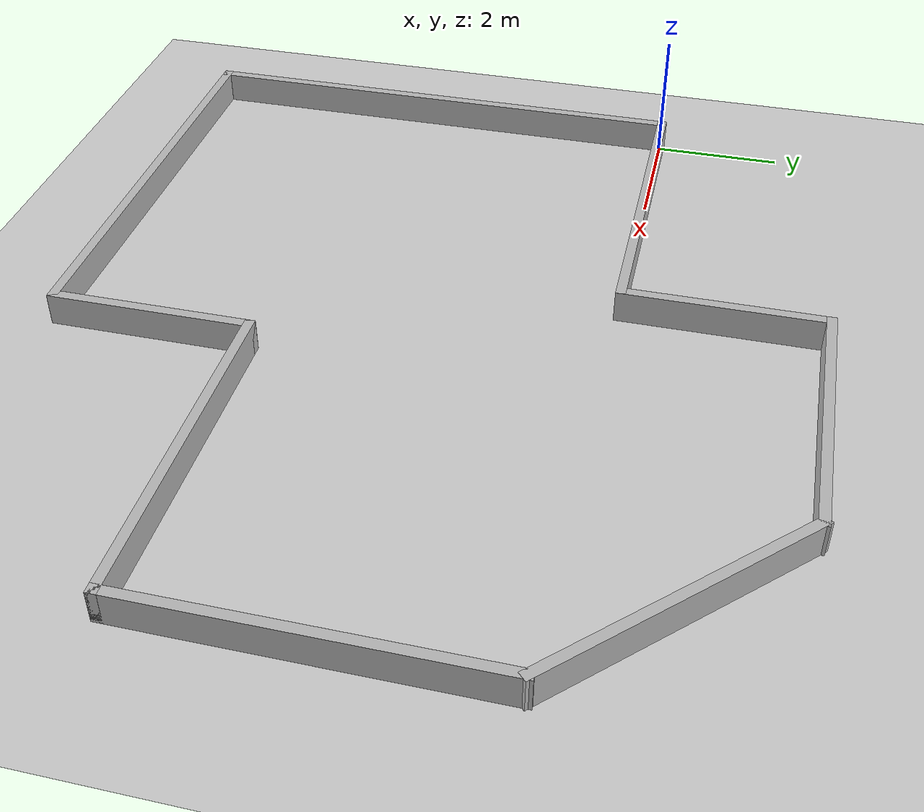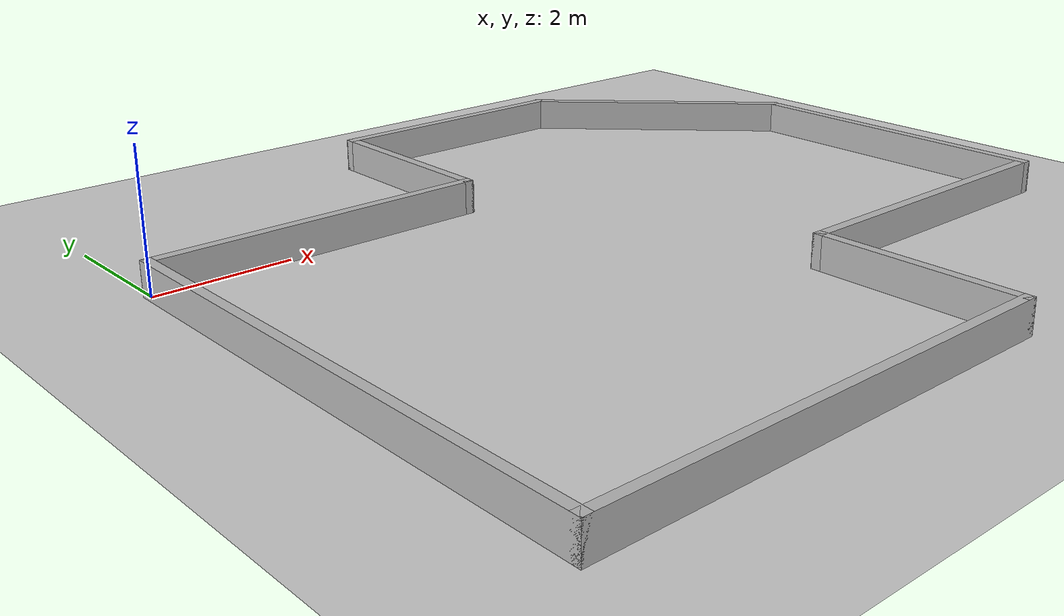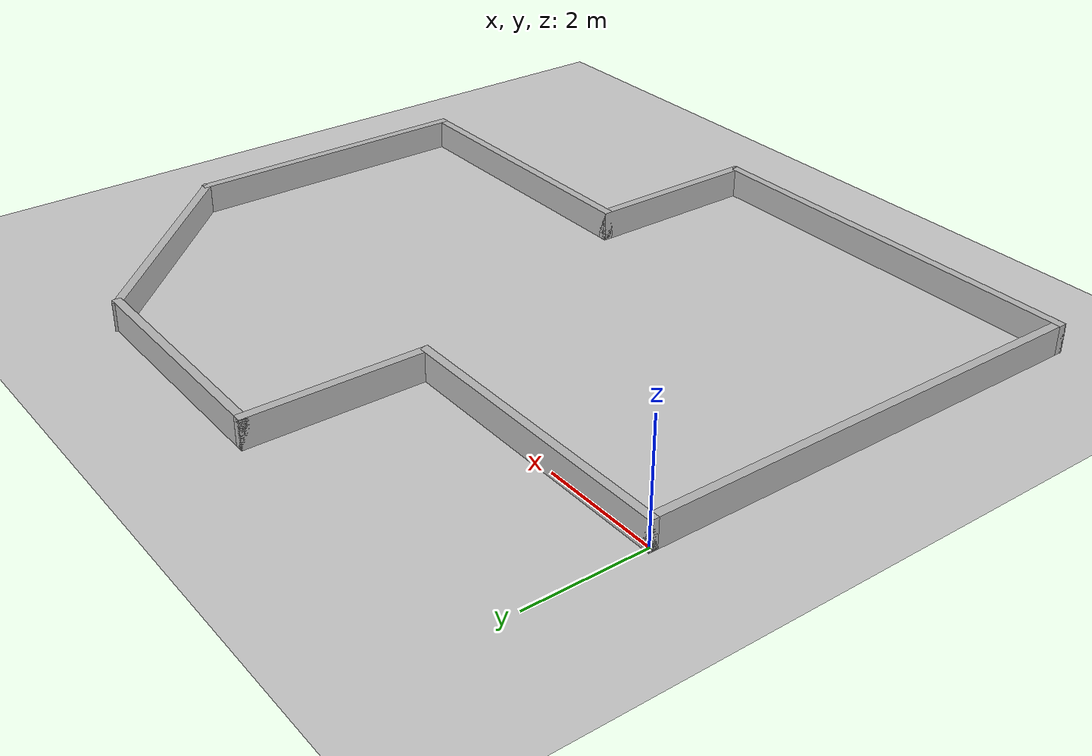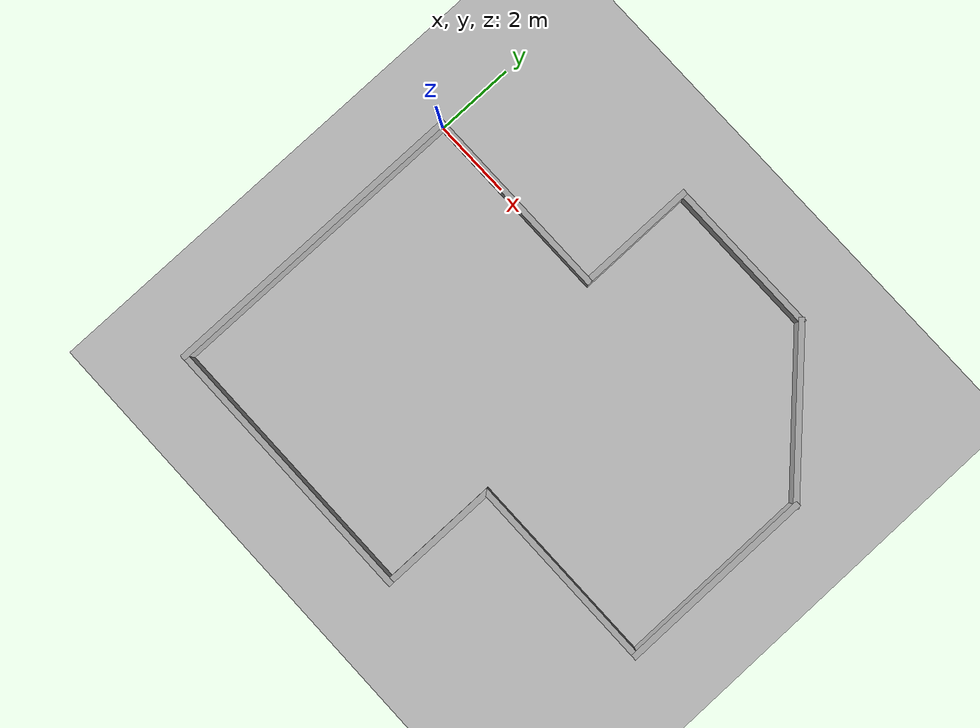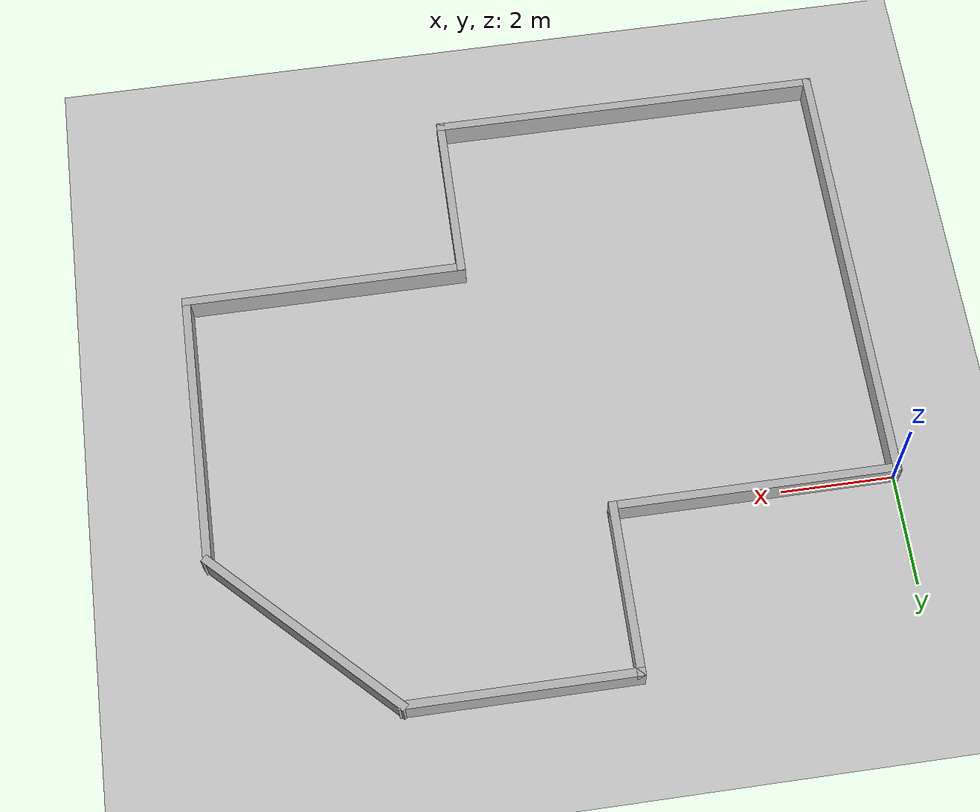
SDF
<?xml version="1.0" ?>
<sdf version="1.6">
  <world name="default">
    <include><uri>model://ground_plane</uri></include>
    <include><uri>model://sun</uri></include>

    <gui>
      <camera name="user_camera">
        <pose>6 -14 14 0 0.883 1.571</pose>
        <track_visual>
          <name>limo_gazebo</name>
          <static>true</static>
          <use_model_frame>true</use_model_frame>
          <xyz>-2.5 0 5</xyz>
          <inherit_yaw>true</inherit_yaw>
        </track_visual>
      </camera>
    </gui>

    <model name="walls">
      <static>true</static>

      <link name="wall1">
        <pose>2.5 0 0.25 0 0 0</pose>
        <collision name="collision"><geometry><box><size>5.15 0.15 0.5</size></box></geometry></collision>
        <visual name="visual"><geometry><box><size>5.15 0.15 0.5</size></box></geometry></visual>
      </link>

      <link name="wall2">
        <pose>5 1.5 0.25 0 0 0</pose>
        <collision name="collision"><geometry><box><size>0.15 3.15 0.5</size></box></geometry></collision>
        <visual name="visual"><geometry><box><size>0.15 3.15 0.5</size></box></geometry></visual>
      </link>

      <link name="wall3">
        <pose>7 3 0.25 0 0 0</pose>
        <collision name="collision"><geometry><box><size>4.15 0.15 0.5</size></box></geometry></collision>
        <visual name="visual"><geometry><box><size>4.15 0.15 0.5</size></box></geometry></visual>
      </link>

      <link name="wall4">
        <pose>10.5 1.5 0.25 0 0 -0.785398</pose>
        <collision name="collision"><geometry><box><size>4.4 0.15 0.5</size></box></geometry></collision>
        <visual name="visual"><geometry><box><size>4.4 0.15 0.5</size></box></geometry></visual>
      </link>

      <link name="wall5">
        <pose>12 -2.5 0.25 0 0 0</pose>
        <collision name="collision"><geometry><box><size>0.15 5.15 0.5</size></box></geometry></collision>
        <visual name="visual"><geometry><box><size>0.15 5.15 0.5</size></box></geometry></visual>
      </link>

      <link name="wall6">
        <pose>9.5 -5 0.25 0 0 0</pose>
        <collision name="collision"><geometry><box><size>5.15 0.15 0.5</size></box></geometry></collision>
        <visual name="visual"><geometry><box><size>5.15 0.15 0.5</size></box></geometry></visual>
      </link>

      <link name="wall7">
        <pose>7 -6.5 0.25 0 0 0</pose>
        <collision name="collision"><geometry><box><size>0.15 3.15 0.5</size></box></geometry></collision>
        <visual name="visual"><geometry><box><size>0.15 3.15 0.5</size></box></geometry></visual>
      </link>

      <link name="wall8">
        <pose>3.5 -8 0.25 0 0 0</pose>
        <collision name="collision"><geometry><box><size>7.15 0.15 0.5</size></box></geometry></collision>
        <visual name="visual"><geometry><box><size>7.15 0.15 0.5</size></box></geometry></visual>
      </link>

      <link name="wall9">
        <pose>0 -4 0.25 0 0 0</pose>
        <collision name="collision"><geometry><box><size>0.15 8.15 0.5</size></box></geometry></collision>
        <visual name="visual"><geometry><box><size>0.15 8.15 0.5</size></box></geometry></visual>
      </link>

    </model>
  </world>
</sdf>
